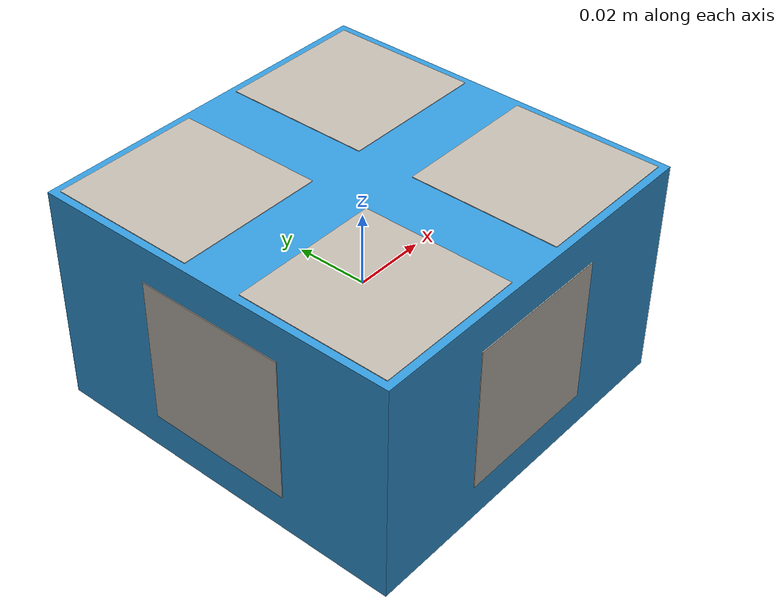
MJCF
<mujoco model="push_box">
  <compiler angle="radian" autolimits="true"/>

  <asset>
    <material name="box_mat" rgba="0.2 0.6 0.85 1" specular="0.4" shininess="0.2"/>
    <texture name="tag_0_tex" type="2d" file="tags/tag36_11_00000.png"/>
    <texture name="tag_1_tex" type="2d" file="tags/tag36_11_00001.png"/>
    <texture name="tag_2_tex" type="2d" file="tags/tag36_11_00002.png"/>
    <texture name="tag_3_tex" type="2d" file="tags/tag36_11_00003.png"/>
    <texture name="tag_4_tex" type="2d" file="tags/tag36_11_00004.png"/>
    <texture name="tag_5_tex" type="2d" file="tags/tag36_11_00005.png"/>
    <texture name="tag_6_tex" type="2d" file="tags/tag36_11_00006.png"/>
    <texture name="tag_7_tex" type="2d" file="tags/tag36_11_00007.png"/>

    <material name="tag_0_mat" texture="tag_0_tex" specular="0" shininess="0" rgba="1 1 1 1"/>
    <material name="tag_1_mat" texture="tag_1_tex" specular="0" shininess="0" rgba="1 1 1 1"/>
    <material name="tag_2_mat" texture="tag_2_tex" specular="0" shininess="0" rgba="1 1 1 1"/>
    <material name="tag_3_mat" texture="tag_3_tex" specular="0" shininess="0" rgba="1 1 1 1"/>
    <material name="tag_4_mat" texture="tag_4_tex" specular="0" shininess="0" rgba="1 1 1 1"/>
    <material name="tag_5_mat" texture="tag_5_tex" specular="0" shininess="0" rgba="1 1 1 1"/>
    <material name="tag_6_mat" texture="tag_6_tex" specular="0" shininess="0" rgba="1 1 1 1"/>
    <material name="tag_7_mat" texture="tag_7_tex" specular="0" shininess="0" rgba="1 1 1 1"/>
  </asset>

  <worldbody>
    <body name="box" pos="0 0 0">
      <freejoint name="box_joint"/>

      <geom name="box_geom"
            type="box"
            size="0.05 0.05 0.03"
            mass="0.3"
            material="box_mat"
            condim="6"
            friction="0.3 0.005 0.001"
            solimp="0.95 0.99 0.001"
            solref="0.02 1.0"/>

      <site name="box_center" pos="0 0 0" size="0.003" rgba="1 0 0 1"/>

      <geom name="tag_top_0"
            type="box"
            pos="-0.028 -0.028 0.0301"
            size="0.02 0.02 0.0001"
            material="tag_0_mat"
            contype="0" conaffinity="0" mass="0"/>

      <geom name="tag_top_1"
            type="box"
            pos="0.028 -0.028 0.0301"
            size="0.02 0.02 0.0001"
            material="tag_1_mat"
            contype="0" conaffinity="0" mass="0"/>

      <geom name="tag_top_2"
            type="box"
            pos="-0.028 0.028 0.0301"
            size="0.02 0.02 0.0001"
            material="tag_2_mat"
            contype="0" conaffinity="0" mass="0"/>

      <geom name="tag_top_3"
            type="box"
            pos="0.028 0.028 0.0301"
            size="0.02 0.02 0.0001"
            material="tag_3_mat"
            contype="0" conaffinity="0" mass="0"/>

      <geom name="tag_side_py"
            type="box"
            pos="0.000 0.0501 0.000"
            euler="-1.5708 0 0"
            size="0.02 0.02 0.0001"
            material="tag_4_mat"
            contype="0" conaffinity="0" mass="0"/>

      <geom name="tag_side_nx"
            type="box"
            pos="-0.0501 0.000 0.000"
            euler="0 1.5708 0"
            size="0.02 0.02 0.0001"
            material="tag_5_mat"
            contype="0" conaffinity="0" mass="0"/>

      <geom name="tag_side_ny"
            type="box"
            pos="0.000 -0.0501 0.000"
            euler="1.5708 0 0"
            size="0.02 0.02 0.0001"
            material="tag_6_mat"
            contype="0" conaffinity="0" mass="0"/>

      <geom name="tag_side_px"
            type="box"
            pos="0.0501 0.000 0.000"
            euler="0 -1.5708 0"
            size="0.02 0.02 0.0001"
            material="tag_7_mat"
            contype="0" conaffinity="0" mass="0"/>
    </body>
  </worldbody>
</mujoco>
